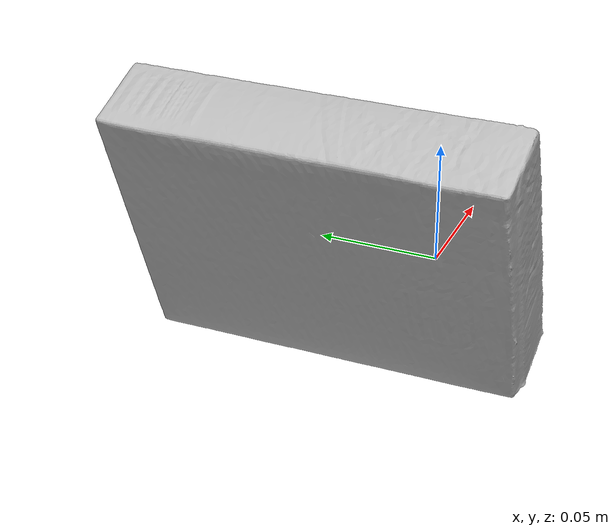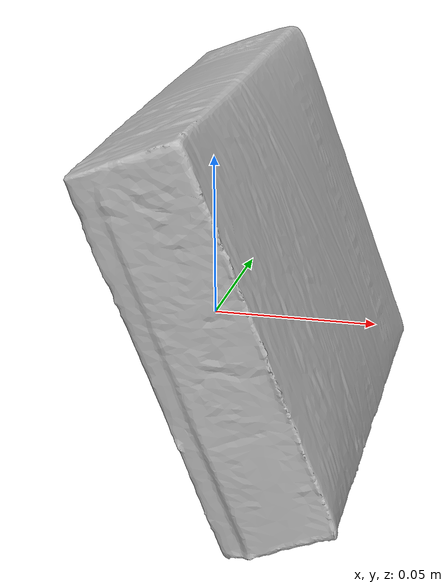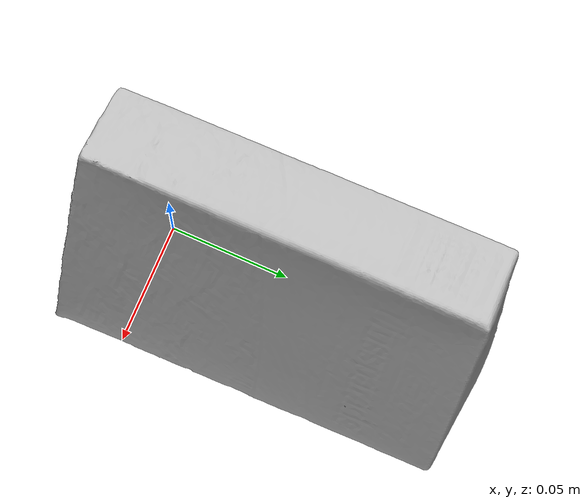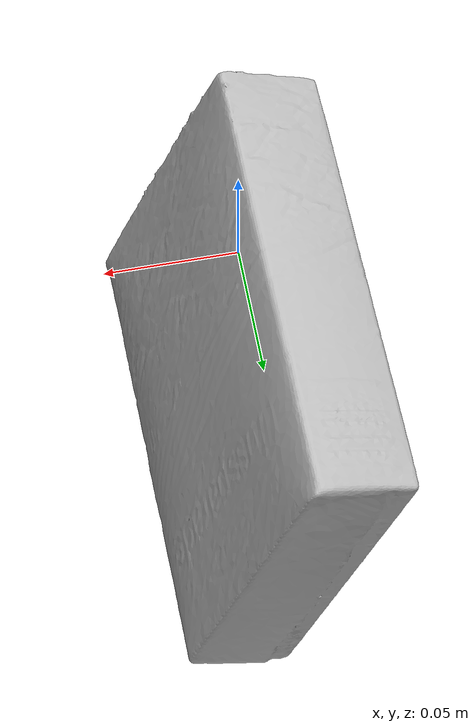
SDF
<?xml version='1.0'?>
<sdf version="1.4">
  <model name="NutCandy">
    <static>false</static>
    <link name="link">
      <inertial>
        <pose>0.004279052839389405 0.049515790939236214 -0.0012137420346301918 1.575000392982093 0.36097253269577073 -3.1257675813784584</pose>
        <mass>0.09318794359784996</mass>
        <inertia>
          <ixx>0.00035640237654804195</ixx>
          <ixy>-1.427607894737705e-20</ixy>
          <ixz>-1.8847117101969926e-20</ixz>
          <iyy>0.00024059861417008853</iyy>
          <iyz>4.0836744994738145e-20</iyz>
          <izz>0.00014203197262454027</izz>
        </inertia>
      </inertial>
      <collision name="collision">
        <geometry>
          <mesh>
            <!-- Use a downsampled mesh for collisions -->
            <uri>model:///NutCandy/NutCandy_250_collision.obj</uri>
	        </mesh>
        </geometry>
        <surface>
      </surface>
      </collision>
      <visual name="visual">
        <geometry>
          <mesh>
            <uri>model:///NutCandy/NutCandy_25k_tex.obj</uri>
	        </mesh>
        </geometry>
        <material>
          <script>
            <uri>model:///NutCandy/NutCandy.material</uri>
            <name>NutCandy</name>
          </script>
        </material>
      </visual>
    </link>
  </model>
</sdf>
